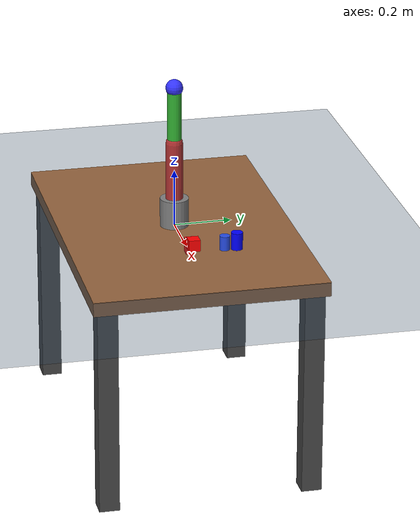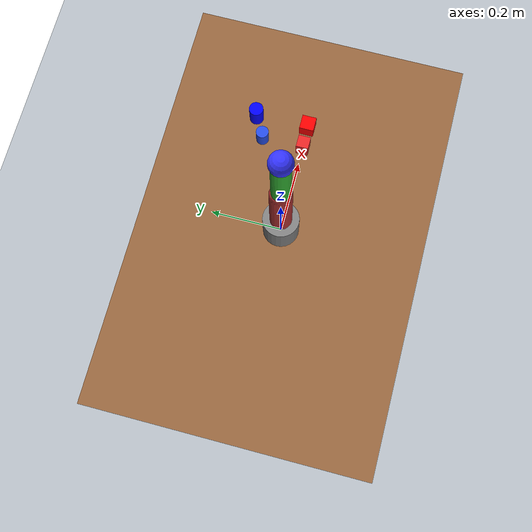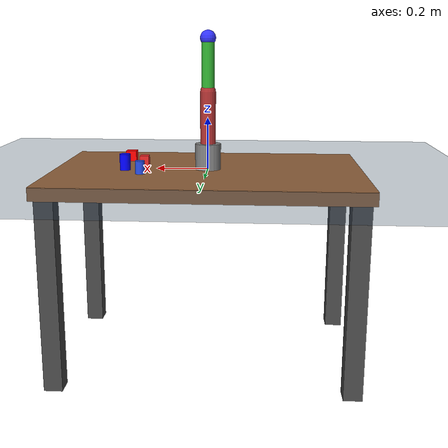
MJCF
<mujoco model="scene">
    <include file="so101_new_calib.xml" />

    <visual>
        <headlight diffuse="0.6 0.6 0.6" ambient="0.3 0.3 0.3" specular="0 0 0" />
        <rgba haze="0.15 0.25 0.35 1" />
        <global azimuth="160" elevation="-20" />
    </visual>

    <asset>
        <texture type="skybox" builtin="gradient" rgb1="0.3 0.5 0.7" rgb2="0 0 0" width="512"
            height="3072" />
        <texture type="2d" name="groundplane" builtin="checker" mark="edge" rgb1="0.2 0.3 0.4"
            rgb2="0.1 0.2 0.3" markrgb="0.8 0.8 0.8" width="300" height="300" />
        <material name="groundplane" texture="groundplane" texuniform="true" texrepeat="5 5"
            reflectance="0.2" />
        <material name="table_wood" rgba="0.58 0.39 0.24 1" />
        <material name="table_metal" rgba="0.28 0.28 0.28 1" />
        <material name="red_object" rgba="0.9 0.15 0.15 1" />
        <material name="blue_object" rgba="0.15 0.3 0.9 1" />
    </asset>

    <worldbody>
        <light pos="0 0 3.5" dir="0 0 -1" directional="true" />
        <geom name="floor" size="0 0 0.05" pos="0 0 0" type="plane" material="groundplane" />

        <!-- Workbench table: surface at z=0, robot base sits on top -->
        <body name="workbench" pos="0 0 0">
            <geom name="table_top" type="box" pos="0 0 -0.025" size="0.6 0.4 0.025"
                  material="table_wood" contype="1" conaffinity="1" />
            <geom name="leg_fl" type="box" pos=" 0.55  0.35 -0.4" size="0.035 0.035 0.375"
                  material="table_metal" />
            <geom name="leg_fr" type="box" pos=" 0.55 -0.35 -0.4" size="0.035 0.035 0.375"
                  material="table_metal" />
            <geom name="leg_rl" type="box" pos="-0.55  0.35 -0.4" size="0.035 0.035 0.375"
                  material="table_metal" />
            <geom name="leg_rr" type="box" pos="-0.55 -0.35 -0.4" size="0.035 0.035 0.375"
                  material="table_metal" />
        </body>

        <body name="red_box" pos="0.25 0.0 0.025">
            <freejoint name="red_box_joint" />
            <inertial pos="0 0 0" mass="0.05" diaginertia="3.54e-05 3.54e-05 2.04e-05" />
            <geom name="red_box_geom" type="box" size="0.0175 0.0175 0.025"
                  material="red_object" friction="0.8 0.005 0.0001" />
        </body>

        <body name="blue_cylinder" pos="0.25 0.12 0.025">
            <freejoint name="blue_cyl_joint" />
            <inertial pos="0 0 0" mass="0.05" diaginertia="3.70e-05 3.70e-05 8.10e-06" />
            <geom name="blue_cyl_geom" type="cylinder" size="0.018 0.025"
                  material="blue_object" friction="0.8 0.005 0.0001" />
        </body>
    </worldbody>
</mujoco>

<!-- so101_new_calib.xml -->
<mujoco model="so101">

    <compiler angle="degree" coordinate="local"/>
    <option gravity="0 0 -9.81" integrator="RK4"/>

    <worldbody>

        <!-- ROBOT BASE -->
        <body name="base" pos="0 0 0">

            <!-- JOINT 1 -->
            <joint name="joint1" type="hinge" axis="0 0 1" pos="0 0 0"/>

            <geom type="cylinder" size="0.05 0.1" rgba="0.5 0.5 0.5 1"/>

            <!-- LINK 1 -->
            <body name="link1" pos="0 0 0.1">
                <joint name="joint2" type="hinge" axis="0 1 0"/>

                <geom type="capsule" size="0.03 0.2" rgba="0.7 0.2 0.2 1"/>

                <!-- LINK 2 -->
                <body name="link2" pos="0 0 0.2">
                    <joint name="joint3" type="hinge" axis="0 1 0"/>

                    <geom type="capsule" size="0.025 0.2" rgba="0.2 0.7 0.2 1"/>

                    <!-- END EFFECTOR -->
                    <body name="end_effector" pos="0 0 0.2">

                        <!-- 🔥 CAMERA ATTACHED TO ARM -->
                        <camera name="arm_cam" pos="0 0 0.05" />

                        <!-- TOOL / GRIPPER -->
                        <geom type="sphere" size="0.03" rgba="0.2 0.2 1 1"/>

                    </body>

                </body>

            </body>

        </body>

        <!-- PLUG (RED BOX) -->
        <body name="plug" pos="0.3 0 0.05">
            <freejoint/>
            <inertial pos="0 0 0" mass="0.1" diaginertia="0.0001 0.0001 0.0001"/>
            <geom type="box" size="0.02 0.02 0.02" rgba="1 0 0 1"/>
        </body>

        <!-- SOCKET (BLUE CYLINDER) -->
        <body name="socket" pos="0.3 0.15 0.05">
            <freejoint/>
            <inertial pos="0 0 0" mass="0.1" diaginertia="0.0001 0.0001 0.0001"/>
            <geom type="cylinder" size="0.02 0.03" rgba="0 0 1 1"/>
        </body>

    </worldbody>

</mujoco>
